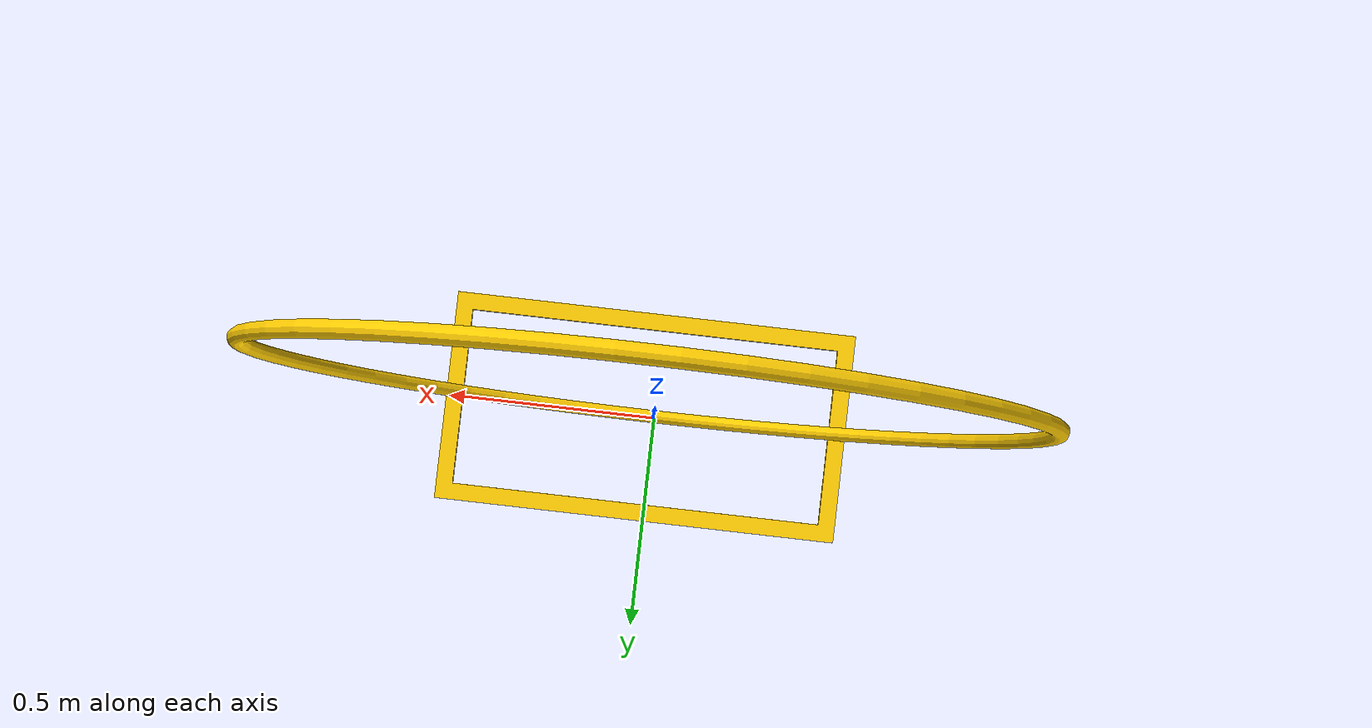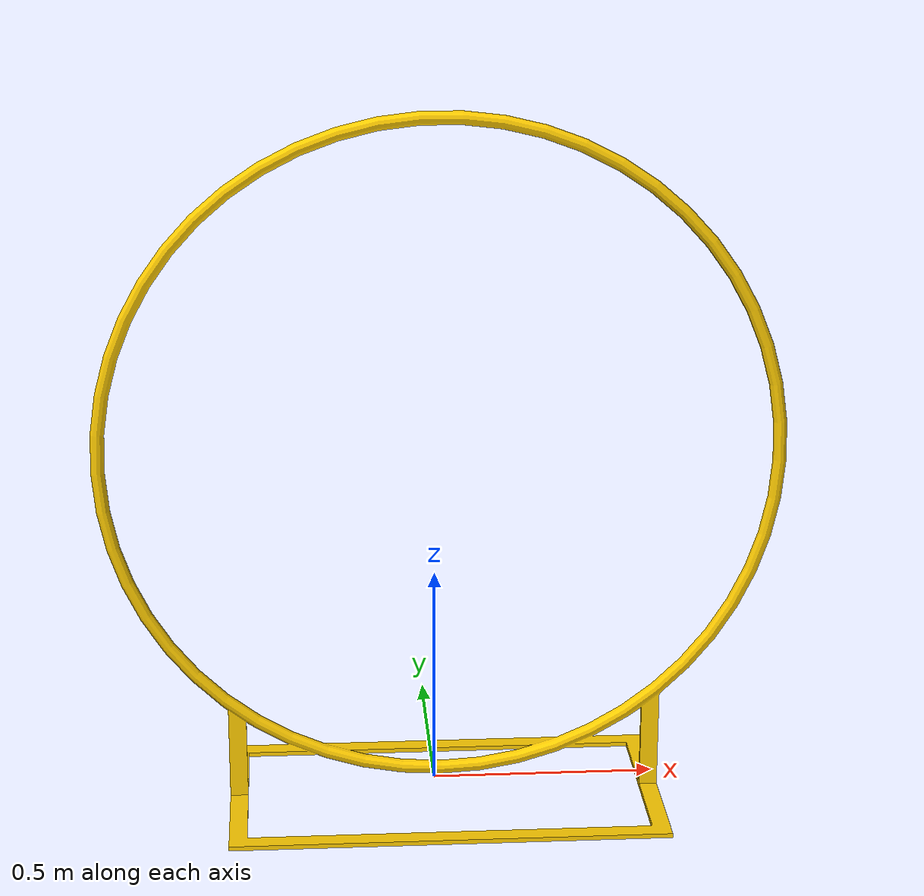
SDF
<?xml version="1.0" ?>
<sdf version="1.7">
  <model name="large_circle">
    <static>true</static>
    <link name="link">
      <collision name="large_circle_col">
        <pose>0 0 0 0 0 0</pose>
        <geometry>
          <mesh>
            <uri>models://large_circle/large_circle.dae</uri>
          </mesh>
        </geometry>
      </collision>
      <visual name="pool_visual">
        <pose>0 0 0 0 0 0</pose>
        <geometry>
          <mesh>
            <uri>models://large_circle/large_circle.dae</uri>
          </mesh>
        </geometry>
        <material>
          <ambient>1 0.8 0 1</ambient>
          <diffuse>1 0.8 0 1</diffuse>
          <specular>0.1 0.1 0.1 1</specular>
          <emissive>1 0.8 0 1</emissive>
        </material>
      </visual>
    </link>
  </model>
</sdf>
